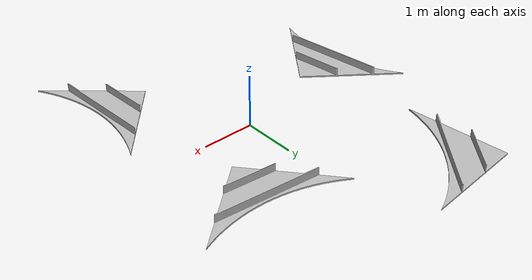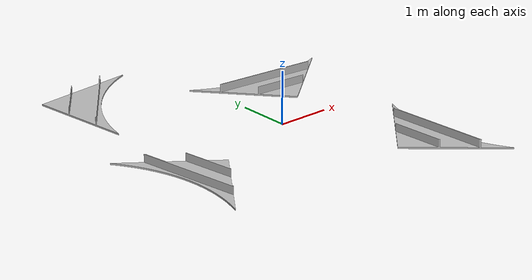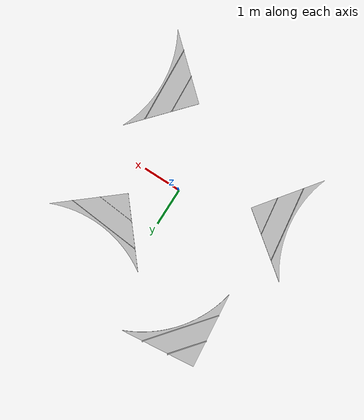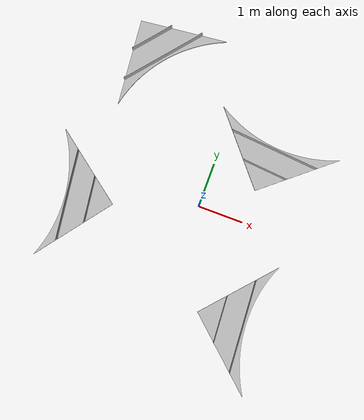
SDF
<sdf version="1.6">
 <world name="default">
  <light name="sun" type="directional">
   <pose>0 0 10 0 -0 0</pose>
   <diffuse>0.8 0.8 0.8 1</diffuse>
   <specular>0.2 0.2 0.2 1</specular>
   <attenuation>
    <range>1000</range>
    <constant>0.9</constant>
    <linear>0.01</linear>
    <quadratic>0.001</quadratic>
   </attenuation>
   <direction>-0.5 0.1 -0.9</direction>
  </light>
  <model name="ground_plane">
   <static>1</static>
   <link name="link">
    <collision name="collision">
     <geometry><plane><normal>0 0 1</normal><size>100 100</size></plane></geometry>
     <surface><friction><ode><mu>100</mu><mu2>50</mu2></ode></friction></surface>
    </collision>
   </link>
  </model>
  <gravity>0 0 -9.8</gravity>
  <magnetic_field>6e-06 2.3e-05 -4.2e-05</magnetic_field>
  <atmosphere type="adiabatic"/>
  <physics name="default_physics" default="0" type="ode">
   <max_step_size>0.001</max_step_size>
   <real_time_factor>1</real_time_factor>
   <real_time_update_rate>1000</real_time_update_rate>
  </physics>
  <scene><ambient>0.4 0.4 0.4 1</ambient><background>0.7 0.7 0.7 1</background><shadows>1</shadows></scene>
  <spherical_coordinates>
   <surface_model>EARTH_WGS84</surface_model>
   <latitude_deg>0</latitude_deg>
   <longitude_deg>0</longitude_deg>
   <elevation>0</elevation>
   <heading_deg>0</heading_deg>
  </spherical_coordinates>
  <model name="kogumi_part">
   <static>1</static>
   <link name="kogumi_part">
    <pose>0 0 0 1.571 -0 0</pose>
    <collision name="collision">
     <geometry><mesh><uri>model://kogumi_part/mesh/kogumi_part_scale.stl</uri></mesh></geometry>
     <surface><friction><ode><mu>2</mu><mu2>2</mu2></ode></friction></surface>
    </collision>
    <inertial>
     <mass>1</mass>
     <inertia><ixx>1</ixx><ixy>0</ixy><ixz>0</ixz><iyy>1</iyy><iyz>0</iyz><izz>1</izz></inertia>
    </inertial>
    <visual name="visual">
     <geometry><mesh><uri>model://kogumi_part/mesh/kogumi_part_scale.stl</uri></mesh></geometry>
    </visual>
   </link>
   <pose>-4.57325 -1.00151 0 0 -0 0.923076</pose>
  </model>
  <model name="kogumi_part_0">
   <static>1</static>
   <link name="kogumi_part">
    <pose>0 0 0 1.571 -0 0</pose>
    <collision name="collision">
     <geometry><mesh><uri>model://kogumi_part/mesh/kogumi_part_scale.stl</uri></mesh></geometry>
     <surface><friction><ode><mu>2</mu><mu2>2</mu2></ode></friction></surface>
    </collision>
    <inertial>
     <mass>1</mass>
     <inertia><ixx>1</ixx><ixy>0</ixy><ixz>0</ixz><iyy>1</iyy><iyz>0</iyz><izz>1</izz></inertia>
    </inertial>
    <visual name="visual">
     <geometry><mesh><uri>model://kogumi_part/mesh/kogumi_part_scale.stl</uri></mesh></geometry>
    </visual>
   </link>
   <pose>-0.484953 1.71677 0 0 0 -3.03943</pose>
  </model>
  <model name="kogumi_part_1">
   <static>1</static>
   <link name="kogumi_part">
    <pose>0 0 0 1.571 -0 0</pose>
    <collision name="collision">
     <geometry><mesh><uri>model://kogumi_part/mesh/kogumi_part_scale.stl</uri></mesh></geometry>
     <surface><friction><ode><mu>2</mu><mu2>2</mu2></ode></friction></surface>
    </collision>
    <inertial>
     <mass>1</mass>
     <inertia><ixx>1</ixx><ixy>0</ixy><ixz>0</ixz><iyy>1</iyy><iyz>0</iyz><izz>1</izz></inertia>
    </inertial>
    <visual name="visual">
     <geometry><mesh><uri>model://kogumi_part/mesh/kogumi_part_scale.stl</uri></mesh></geometry>
    </visual>
   </link>
   <pose>1.28234 3.56648 0 0 0 -0.874127</pose>
  </model>
  <model name="kogumi_part_2">
   <static>1</static>
   <link name="kogumi_part">
    <pose>0 0 0 1.571 -0 0</pose>
    <collision name="collision">
     <geometry><mesh><uri>model://kogumi_part/mesh/kogumi_part_scale.stl</uri></mesh></geometry>
     <surface><friction><ode><mu>2</mu><mu2>2</mu2></ode></friction></surface>
    </collision>
    <inertial>
     <mass>1</mass>
     <inertia><ixx>1</ixx><ixy>0</ixy><ixz>0</ixz><iyy>1</iyy><iyz>0</iyz><izz>1</izz></inertia>
    </inertial>
    <visual name="visual">
     <geometry><mesh><uri>model://kogumi_part/mesh/kogumi_part_scale.stl</uri></mesh></geometry>
    </visual>
   </link>
   <pose>3.57851 -1.96139 -0 0 0 -2.29764</pose>
  </model>
 </world>
</sdf>
